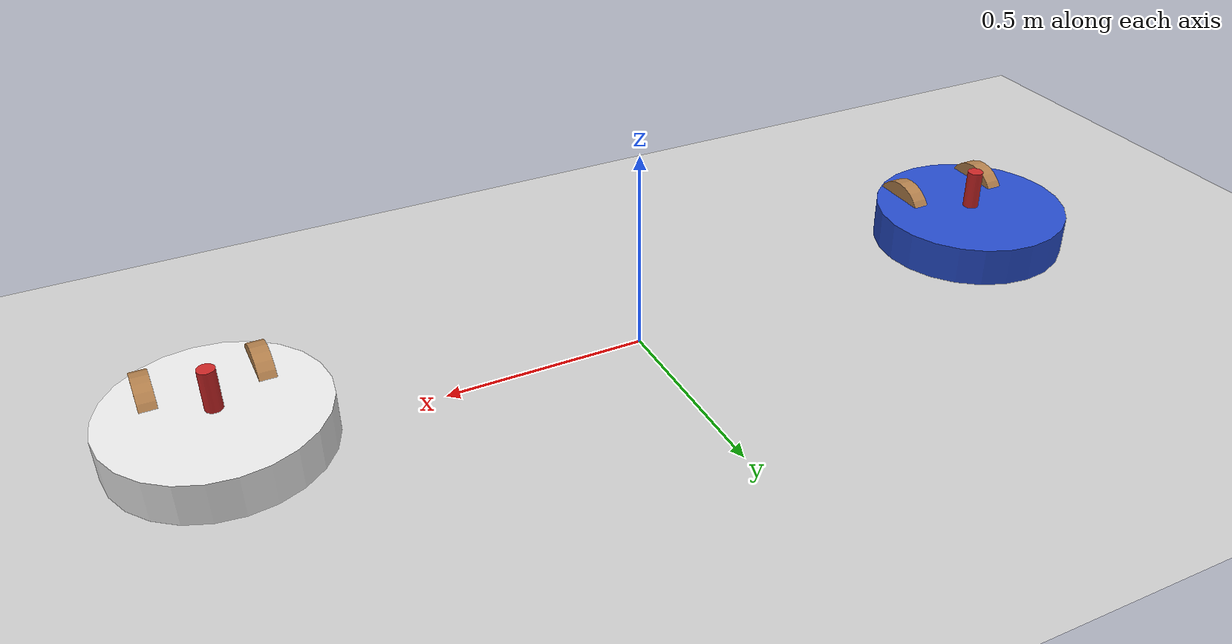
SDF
<sdf version="1.7">
 <world name="default">
  <light name="sun" type="directional">
   <pose>0 0 10 0 -0 0</pose>
   <diffuse>0.8 0.8 0.8 1</diffuse>
   <specular>0.1 0.1 0.1 1</specular>
   <attenuation>
    <range>1000</range>
    <constant>0.9</constant>
    <linear>0.01</linear>
    <quadratic>0.001</quadratic>
   </attenuation>
   <direction>-0.5 0.5 -1</direction>
   <spot><inner_angle>0</inner_angle><outer_angle>0</outer_angle><falloff>0</falloff></spot>
  </light>
  <model name="ground_plane">
   <static>1</static>
   <link name="link">
    <collision name="collision">
     <geometry><plane><normal>0 0 1</normal><size>100 100</size></plane></geometry>
     <surface><friction><ode><mu>1</mu><mu2>1</mu2></ode></friction></surface>
    </collision>
    <visual name="visual">
     <cast_shadows>0</cast_shadows>
     <geometry><plane><normal>0 0 1</normal><size>100 100</size></plane></geometry>
     <material>
      <script><uri>file://media/materials/scripts/gazebo.material</uri><name>Gazebo/Grey</name></script>
     </material>
    </visual>
   </link>
  </model>
  <gravity>0 0 -9.8</gravity>
  <magnetic_field>6e-06 2.3e-05 -4.2e-05</magnetic_field>
  <atmosphere type="adiabatic"/>
  <physics name="default_physics" default="0" type="ode">
   <max_step_size>0.001</max_step_size>
   <real_time_factor>1</real_time_factor>
   <real_time_update_rate>1000</real_time_update_rate>
  </physics>
  <scene><ambient>0.4 0.4 0.4 1</ambient><background>0.7 0.7 0.7 1</background><shadows>1</shadows></scene>
  <spherical_coordinates>
   <surface_model>EARTH_WGS84</surface_model>
   <latitude_deg>0</latitude_deg>
   <longitude_deg>0</longitude_deg>
   <elevation>0</elevation>
   <heading_deg>0</heading_deg>
  </spherical_coordinates>
  <model name="logger1">
   <link name="logger-chassis">
    <inertial>
     <pose>0.005952 0 -0.002381 0 -0 0</pose>
     <mass>2.1</mass>
     <inertia>
      <ixx>0.0332188</ixx>
      <ixy>0</ixy>
      <ixz>0.000595238</ixz>
      <iyy>0.0347069</iyy>
      <iyz>0</iyz>
      <izz>0.0640521</izz>
     </inertia>
    </inertial>
    <collision name="logger-chassis_collision">
     <geometry><cylinder><length>0.1</length><radius>0.25</radius></cylinder></geometry>
     <surface><friction><ode><mu>0.5</mu><mu2>0.5</mu2></ode></friction></surface>
    </collision>
    <collision name="logger-chassis_fixed_joint_lump__logger-caster_collision_1">
     <pose>0.125 0 -0.05 0 -0 0</pose>
     <geometry><sphere><radius>0.04</radius></sphere></geometry>
     <surface><friction><ode><mu>0</mu><mu2>0</mu2></ode></friction></surface>
    </collision>
    <visual name="logger-chassis_visual">
     <geometry><cylinder><length>0.1</length><radius>0.25</radius></cylinder></geometry>
     <material>
      <script><name>Gazebo/White</name><uri>file://media/materials/scripts/gazebo.material</uri></script>
     </material>
    </visual>
    <visual name="logger-chassis_fixed_joint_lump__logger-caster_visual_1">
     <pose>0.125 0 -0.05 0 -0 0</pose>
     <geometry><sphere><radius>0.04</radius></sphere></geometry>
     <material>
      <script><name>Gazebo/Grey</name><uri>file://media/materials/scripts/gazebo.material</uri></script>
     </material>
    </visual>
   </link>
   <joint name="logger-chassis2hat" type="revolute">
    <pose relative_to="logger-chassis">0 0 0.1 0 -0 0</pose>
    <parent>logger-chassis</parent>
    <child>logger-hat</child>
    <axis>
     <xyz>0 0 1</xyz>
     <limit><lower>-1e+16</lower><upper>1e+16</upper></limit>
     <dynamics><spring_reference>0</spring_reference><spring_stiffness>0</spring_stiffness></dynamics>
    </axis>
   </joint>
   <link name="logger-hat">
    <pose relative_to="logger-chassis2hat">0 0 0 0 -0 0</pose>
    <inertial>
     <pose>0 0 0.04 0 -0 0</pose>
     <mass>0.5</mass>
     <inertia>
      <ixx>0.000466667</ixx>
      <ixy>0</ixy>
      <ixz>0</ixz>
      <iyy>0.000466667</iyy>
      <iyz>0</iyz>
      <izz>0.0001</izz>
     </inertia>
    </inertial>
    <collision name="logger-hat_collision">
     <geometry><cylinder><length>0.1</length><radius>0.02</radius></cylinder></geometry>
     <surface><friction><ode><mu>0</mu><mu2>0</mu2></ode></friction></surface>
    </collision>
    <visual name="logger-hat_visual">
     <geometry><cylinder><length>0.1</length><radius>0.02</radius></cylinder></geometry>
     <material>
      <script><name>Gazebo/Red</name><uri>file://media/materials/scripts/gazebo.material</uri></script>
     </material>
    </visual>
   </link>
   <joint name="logger-chassis2left_wheel" type="revolute">
    <pose relative_to="logger-chassis">-0.125 -0.125 0 0 -0 0</pose>
    <parent>logger-chassis</parent>
    <child>logger-left_wheel</child>
    <axis>
     <xyz>0 1 0</xyz>
     <limit><lower>-1e+16</lower><upper>1e+16</upper></limit>
     <dynamics><spring_reference>0</spring_reference><spring_stiffness>0</spring_stiffness></dynamics>
    </axis>
   </joint>
   <link name="logger-left_wheel">
    <pose relative_to="logger-chassis2left_wheel">0 0 0 0 -0 0</pose>
    <inertial>
     <pose>0 0 0 1.5708 -0 0</pose>
     <mass>0.5</mass>
     <inertia>
      <ixx>0.00107917</ixx>
      <ixy>0</ixy>
      <ixz>0</ixz>
      <iyy>0.00107917</iyy>
      <iyz>0</iyz>
      <izz>0.002025</izz>
     </inertia>
    </inertial>
    <collision name="logger-left_wheel_collision">
     <pose>0 0 0 1.5708 -0 0</pose>
     <geometry><cylinder><length>0.04</length><radius>0.09</radius></cylinder></geometry>
     <surface><friction><ode><mu>0.99</mu><mu2>0.99</mu2></ode></friction></surface>
    </collision>
    <visual name="logger-left_wheel_visual">
     <pose>0 0 0 1.5708 -0 0</pose>
     <geometry><cylinder><length>0.04</length><radius>0.09</radius></cylinder></geometry>
     <material>
      <script><name>Gazebo/Wood</name><uri>file://media/materials/scripts/gazebo.material</uri></script>
     </material>
    </visual>
   </link>
   <joint name="logger-chassis2right_wheel" type="revolute">
    <pose relative_to="logger-chassis">-0.125 0.125 0 0 -0 0</pose>
    <parent>logger-chassis</parent>
    <child>logger-right_wheel</child>
    <axis>
     <xyz>0 1 0</xyz>
     <limit><lower>-1e+16</lower><upper>1e+16</upper></limit>
     <dynamics><spring_reference>0</spring_reference><spring_stiffness>0</spring_stiffness></dynamics>
    </axis>
   </joint>
   <link name="logger-right_wheel">
    <pose relative_to="logger-chassis2right_wheel">0 0 0 0 -0 0</pose>
    <inertial>
     <pose>0 0 0 1.5708 -0 0</pose>
     <mass>0.5</mass>
     <inertia>
      <ixx>0.00107917</ixx>
      <ixy>0</ixy>
      <ixz>0</ixz>
      <iyy>0.00107917</iyy>
      <iyz>0</iyz>
      <izz>0.002025</izz>
     </inertia>
    </inertial>
    <collision name="logger-right_wheel_collision">
     <pose>0 0 0 1.5708 -0 0</pose>
     <geometry><cylinder><length>0.04</length><radius>0.09</radius></cylinder></geometry>
     <surface><friction><ode><mu>0.99</mu><mu2>0.99</mu2></ode></friction></surface>
    </collision>
    <visual name="logger-right_wheel_visual">
     <pose>0 0 0 1.5708 -0 0</pose>
     <geometry><cylinder><length>0.04</length><radius>0.09</radius></cylinder></geometry>
     <material>
      <script><name>Gazebo/Wood</name><uri>file://media/materials/scripts/gazebo.material</uri></script>
     </material>
    </visual>
   </link>
   <static>0</static>
   <plugin name="differential_drive_controller" filename="libgazebo_ros_diff_drive.so">
    <legacyMode>0</legacyMode>
    <alwaysOn>1</alwaysOn>
    <updateRate>100</updateRate>
    <leftJoint>logger-chassis2left_wheel</leftJoint>
    <rightJoint>logger-chassis2right_wheel</rightJoint>
    <wheelSeparation>0.25</wheelSeparation>
    <wheelDiameter>0.18</wheelDiameter>
    <wheelTorque>1</wheelTorque>
    <commandTopic>logger1/cmd_vel</commandTopic>
    <odometryTopic>odom</odometryTopic>
    <odometryFrame>odom</odometryFrame>
    <robotBaseFrame>logger-chassis</robotBaseFrame>
    <robotNamespace>/</robotNamespace>
   </plugin>
   <pose>0.999943 0.002704 0.089998 0 1.5e-05 1.57178</pose>
  </model>
  <model name="logger0">
   <link name="logger-chassis">
    <inertial>
     <pose>0.005952 0 -0.002381 0 -0 0</pose>
     <mass>2.1</mass>
     <inertia>
      <ixx>0.0332188</ixx>
      <ixy>0</ixy>
      <ixz>0.000595238</ixz>
      <iyy>0.0347069</iyy>
      <iyz>0</iyz>
      <izz>0.0640521</izz>
     </inertia>
    </inertial>
    <collision name="logger-chassis_collision">
     <geometry><cylinder><length>0.1</length><radius>0.25</radius></cylinder></geometry>
     <surface><friction><ode><mu>0.5</mu><mu2>0.5</mu2></ode></friction></surface>
    </collision>
    <collision name="logger-chassis_fixed_joint_lump__logger-caster_collision_1">
     <pose>0.125 0 -0.05 0 -0 0</pose>
     <geometry><sphere><radius>0.04</radius></sphere></geometry>
     <surface><friction><ode><mu>0</mu><mu2>0</mu2></ode></friction></surface>
    </collision>
    <visual name="logger-chassis_visual">
     <geometry><cylinder><length>0.1</length><radius>0.25</radius></cylinder></geometry>
     <material>
      <script><name>Gazebo/Blue</name><uri>file://media/materials/scripts/gazebo.material</uri></script>
     </material>
    </visual>
    <visual name="logger-chassis_fixed_joint_lump__logger-caster_visual_1">
     <pose>0.125 0 -0.05 0 -0 0</pose>
     <geometry><sphere><radius>0.04</radius></sphere></geometry>
     <material>
      <script><name>Gazebo/Grey</name><uri>file://media/materials/scripts/gazebo.material</uri></script>
     </material>
    </visual>
   </link>
   <joint name="logger-chassis2hat" type="revolute">
    <pose relative_to="logger-chassis">0 0 0.1 0 -0 0</pose>
    <parent>logger-chassis</parent>
    <child>logger-hat</child>
    <axis>
     <xyz>0 0 1</xyz>
     <limit><lower>-1e+16</lower><upper>1e+16</upper></limit>
     <dynamics><spring_reference>0</spring_reference><spring_stiffness>0</spring_stiffness></dynamics>
    </axis>
   </joint>
   <link name="logger-hat">
    <pose relative_to="logger-chassis2hat">0 0 0 0 -0 0</pose>
    <inertial>
     <pose>0 0 0.04 0 -0 0</pose>
     <mass>0.5</mass>
     <inertia>
      <ixx>0.000466667</ixx>
      <ixy>0</ixy>
      <ixz>0</ixz>
      <iyy>0.000466667</iyy>
      <iyz>0</iyz>
      <izz>0.0001</izz>
     </inertia>
    </inertial>
    <collision name="logger-hat_collision">
     <geometry><cylinder><length>0.1</length><radius>0.02</radius></cylinder></geometry>
     <surface><friction><ode><mu>0</mu><mu2>0</mu2></ode></friction></surface>
    </collision>
    <visual name="logger-hat_visual">
     <geometry><cylinder><length>0.1</length><radius>0.02</radius></cylinder></geometry>
     <material>
      <script><name>Gazebo/Red</name><uri>file://media/materials/scripts/gazebo.material</uri></script>
     </material>
    </visual>
   </link>
   <joint name="logger-chassis2left_wheel" type="revolute">
    <pose relative_to="logger-chassis">-0.125 -0.125 0 0 -0 0</pose>
    <parent>logger-chassis</parent>
    <child>logger-left_wheel</child>
    <axis>
     <xyz>0 1 0</xyz>
     <limit><lower>-1e+16</lower><upper>1e+16</upper></limit>
     <dynamics><spring_reference>0</spring_reference><spring_stiffness>0</spring_stiffness></dynamics>
    </axis>
   </joint>
   <link name="logger-left_wheel">
    <pose relative_to="logger-chassis2left_wheel">0 0 0 0 -0 0</pose>
    <inertial>
     <pose>0 0 0 1.5708 -0 0</pose>
     <mass>0.5</mass>
     <inertia>
      <ixx>0.00107917</ixx>
      <ixy>0</ixy>
      <ixz>0</ixz>
      <iyy>0.00107917</iyy>
      <iyz>0</iyz>
      <izz>0.002025</izz>
     </inertia>
    </inertial>
    <collision name="logger-left_wheel_collision">
     <pose>0 0 0 1.5708 -0 0</pose>
     <geometry><cylinder><length>0.04</length><radius>0.09</radius></cylinder></geometry>
     <surface><friction><ode><mu>0.99</mu><mu2>0.99</mu2></ode></friction></surface>
    </collision>
    <visual name="logger-left_wheel_visual">
     <pose>0 0 0 1.5708 -0 0</pose>
     <geometry><cylinder><length>0.04</length><radius>0.09</radius></cylinder></geometry>
     <material>
      <script><name>Gazebo/Wood</name><uri>file://media/materials/scripts/gazebo.material</uri></script>
     </material>
    </visual>
   </link>
   <joint name="logger-chassis2right_wheel" type="revolute">
    <pose relative_to="logger-chassis">-0.125 0.125 0 0 -0 0</pose>
    <parent>logger-chassis</parent>
    <child>logger-right_wheel</child>
    <axis>
     <xyz>0 1 0</xyz>
     <limit><lower>-1e+16</lower><upper>1e+16</upper></limit>
     <dynamics><spring_reference>0</spring_reference><spring_stiffness>0</spring_stiffness></dynamics>
    </axis>
   </joint>
   <link name="logger-right_wheel">
    <pose relative_to="logger-chassis2right_wheel">0 0 0 0 -0 0</pose>
    <inertial>
     <pose>0 0 0 1.5708 -0 0</pose>
     <mass>0.5</mass>
     <inertia>
      <ixx>0.00107917</ixx>
      <ixy>0</ixy>
      <ixz>0</ixz>
      <iyy>0.00107917</iyy>
      <iyz>0</iyz>
      <izz>0.002025</izz>
     </inertia>
    </inertial>
    <collision name="logger-right_wheel_collision">
     <pose>0 0 0 1.5708 -0 0</pose>
     <geometry><cylinder><length>0.04</length><radius>0.09</radius></cylinder></geometry>
     <surface><friction><ode><mu>0.99</mu><mu2>0.99</mu2></ode></friction></surface>
    </collision>
    <visual name="logger-right_wheel_visual">
     <pose>0 0 0 1.5708 -0 0</pose>
     <geometry><cylinder><length>0.04</length><radius>0.09</radius></cylinder></geometry>
     <material>
      <script><name>Gazebo/Wood</name><uri>file://media/materials/scripts/gazebo.material</uri></script>
     </material>
    </visual>
   </link>
   <static>0</static>
   <plugin name="differential_drive_controller" filename="libgazebo_ros_diff_drive.so">
    <legacyMode>0</legacyMode>
    <alwaysOn>1</alwaysOn>
    <updateRate>100</updateRate>
    <leftJoint>logger-chassis2left_wheel</leftJoint>
    <rightJoint>logger-chassis2right_wheel</rightJoint>
    <wheelSeparation>0.25</wheelSeparation>
    <wheelDiameter>0.18</wheelDiameter>
    <wheelTorque>1</wheelTorque>
    <commandTopic>logger0/cmd_vel</commandTopic>
    <odometryTopic>odom</odometryTopic>
    <odometryFrame>odom</odometryFrame>
    <robotBaseFrame>logger-chassis</robotBaseFrame>
    <robotNamespace>/</robotNamespace>
   </plugin>
   <pose>-1.00006 0.002675 0.09 0 -0 1.57176</pose>
  </model>
 </world>
</sdf>
